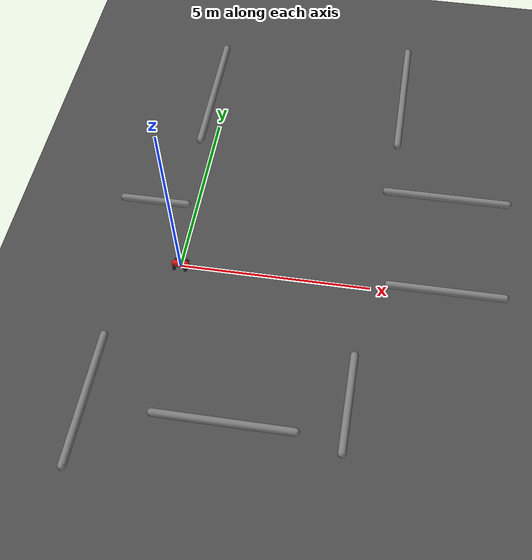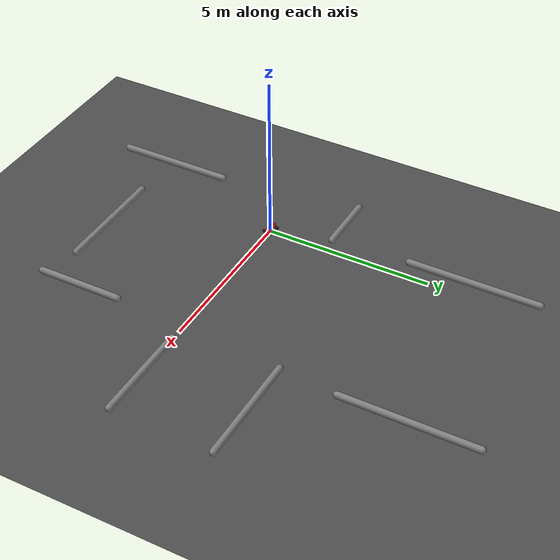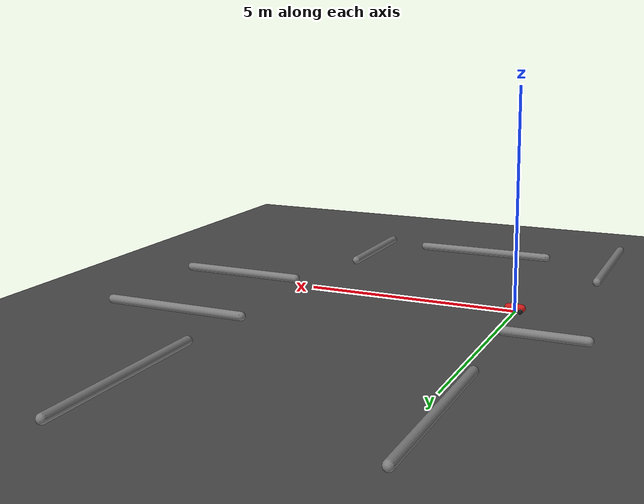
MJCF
<mujoco model="ackermann_car_scene">
  <compiler angle="radian"/>
  <option timestep="0.002" gravity="0 0 -9.81" iterations="4" cone="pyramidal"/>

  <default>
    <joint damping="0.05"/>
    <geom friction="2.0 0.1 0.1" contype="1" conaffinity="1"/>
  </default>

  <worldbody>
    <geom name="floor" type="plane" size="22.0 22.0 0.1" rgba="0.3 0.3 0.3 1"/>
    <geom name="wall_0" type="capsule" size="0.1" fromto="-1.3502831258756345 -5.795858248695001 0.2 -1.3502831258756345 -2.4009722413442454 0.2" rgba="0.5 0.5 0.5 1"/>
    <geom name="wall_1" type="capsule" size="0.1" fromto="4.824576013591134 -4.599851328471251 0.2 4.824576013591134 -2.087515984845215 0.2" rgba="0.5 0.5 0.5 1"/>
    <geom name="wall_2" type="capsule" size="0.1" fromto="5.458691499001908 0.07967654889563391 0.2 8.417146597639487 0.07967654889563391 0.2" rgba="0.5 0.5 0.5 1"/>
    <geom name="wall_3" type="capsule" size="0.1" fromto="0.3175176882841071 -4.241392196838511 0.2 3.707028198677167 -4.241392196838511 0.2" rgba="0.5 0.5 0.5 1"/>
    <geom name="wall_4" type="capsule" size="0.1" fromto="5.273693011942022 4.85833931242584 0.2 5.273693011942022 8.815303002519972 0.2" rgba="0.5 0.5 0.5 1"/>
    <geom name="wall_5" type="capsule" size="0.1" fromto="5.117961210130729 3.1277268425625024 0.2 8.442540580781051 3.1277268425625024 0.2" rgba="0.5 0.5 0.5 1"/>
    <geom name="wall_6" type="capsule" size="0.1" fromto="-1.9949553073711348 1.8850785485446266 0.2 -0.2432022872002202 1.8850785485446266 0.2" rgba="0.5 0.5 0.5 1"/>
    <geom name="wall_7" type="capsule" size="0.1" fromto="-0.3908337986038113 4.252010812404434 0.2 -0.3908337986038113 8.16852673183133 0.2" rgba="0.5 0.5 0.5 1"/>

    <body name="chassis" pos="0 0 0.1">
      <freejoint name="chassis_free"/>
      <geom name="chassis_geom" type="capsule" size="0.09" fromto="-0.15 0 0 0.15 0 0" mass="3.0" rgba="0.8 0.1 0.1 1"/>

      <body name="wheel_fl" pos="0.1483 0.115 -0.05">
        <joint name="steer_fl" type="hinge" axis="0 0 1" range="-0.6 0.6" limited="true" damping="1.0"/>
        <geom name="knuckle_fl_geom" type="sphere" size="0.01" mass="0.05" rgba="0.2 0.2 0.2 1"/>
        <body name="wheel_fl_spin">
          <joint name="spin_fl" type="hinge" axis="0 1 0" damping="0.001"/>
          <geom name="wheel_fl_geom" type="capsule" size="0.05" fromto="0 -0.0215 0 0 0.0215 0" mass="0.1" rgba="0.1 0.1 0.1 1"/>
        </body>
      </body>
      <body name="wheel_fr" pos="0.1483 -0.115 -0.05">
        <joint name="steer_fr" type="hinge" axis="0 0 1" range="-0.6 0.6" limited="true" damping="1.0"/>
        <geom name="knuckle_fr_geom" type="sphere" size="0.01" mass="0.05" rgba="0.2 0.2 0.2 1"/>
        <body name="wheel_fr_spin">
          <joint name="spin_fr" type="hinge" axis="0 1 0" damping="0.001"/>
          <geom name="wheel_fr_geom" type="capsule" size="0.05" fromto="0 -0.0215 0 0 0.0215 0" mass="0.1" rgba="0.1 0.1 0.1 1"/>
        </body>
      </body>
      <body name="wheel_rl" pos="-0.1483 0.115 -0.05">
        <joint name="spin_rl" type="hinge" axis="0 1 0" damping="0.001"/>
        <geom name="wheel_rl_geom" type="capsule" size="0.05" fromto="0 -0.0215 0 0 0.0215 0" mass="0.1" rgba="0.1 0.1 0.1 1"/>
      </body>
      <body name="wheel_rr" pos="-0.1483 -0.115 -0.05">
        <joint name="spin_rr" type="hinge" axis="0 1 0" damping="0.001"/>
        <geom name="wheel_rr_geom" type="capsule" size="0.05" fromto="0 -0.0215 0 0 0.0215 0" mass="0.1" rgba="0.1 0.1 0.1 1"/>
      </body>
    </body>
  </worldbody>

  <equality>
    <joint joint1="steer_fl" joint2="steer_fr"/>
  </equality>

  <actuator>
    <position name="steer" joint="steer_fl" kp="80" ctrlrange="-0.6 0.6" forcerange="-20 20"/>
    <motor name="throttle_rl" joint="spin_rl" gear="0.78" ctrlrange="-1 1"/>
    <motor name="throttle_rr" joint="spin_rr" gear="0.78" ctrlrange="-1 1"/>
  </actuator>
</mujoco>
